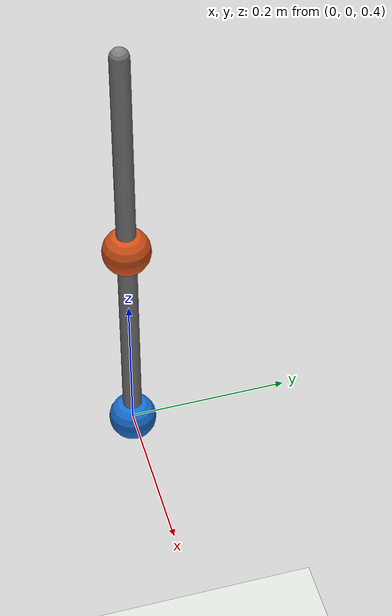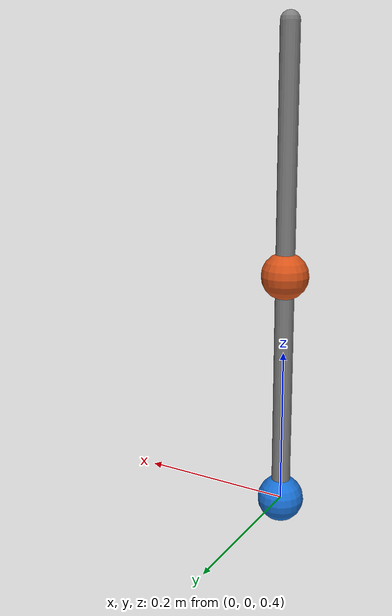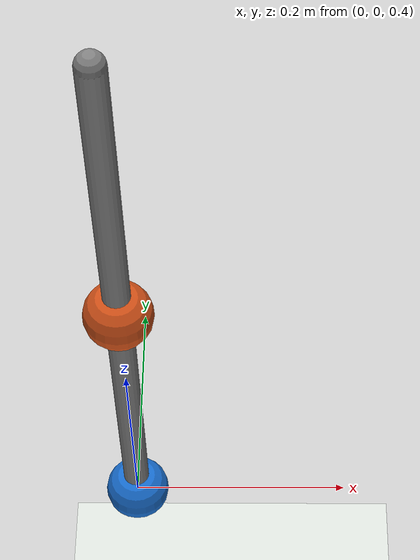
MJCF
<mujoco model="double_pendulum">
  <compiler angle="radian" autolimits="true"/>
  <option timestep="0.002"/>

  <default>
    <joint type="hinge" axis="0 1 0" damping="0"/>
    <geom contype="0" conaffinity="0"/>
  </default>

  <worldbody>
    <light pos="0 -1 2" dir="0 1 -2"/>
    <geom name="floor" type="plane" size="1 1 0.05" pos="0 0 -0.2" rgba=".85 .87 .85 1"/>
    <body name="link1" pos="0 0 1">
      <joint name="j1"/>
      <inertial pos="0 0 -0.3" mass="1.0" diaginertia="1e-4 1e-4 1e-4"/>
      <geom type="capsule" fromto="0 0 0 0 0 -0.3" size="0.012" rgba=".5 .5 .5 1"/>
      <geom type="sphere" pos="0 0 -0.3" size="0.03" rgba=".85 .33 .1 1"/>
      <body name="link2" pos="0 0 -0.3">
        <joint name="j2"/>
        <inertial pos="0 0 -0.3" mass="1.0" diaginertia="1e-4 1e-4 1e-4"/>
        <geom type="capsule" fromto="0 0 0 0 0 -0.3" size="0.012" rgba=".5 .5 .5 1"/>
        <geom type="sphere" pos="0 0 -0.3" size="0.03" rgba=".1 .45 .85 1"/>
        <site name="tip" pos="0 0 -0.3" size="0.005"/>
      </body>
    </body>
  </worldbody>

  <keyframe>
    <key name="release" qpos="2.0 0.5"/>
  </keyframe>
</mujoco>
